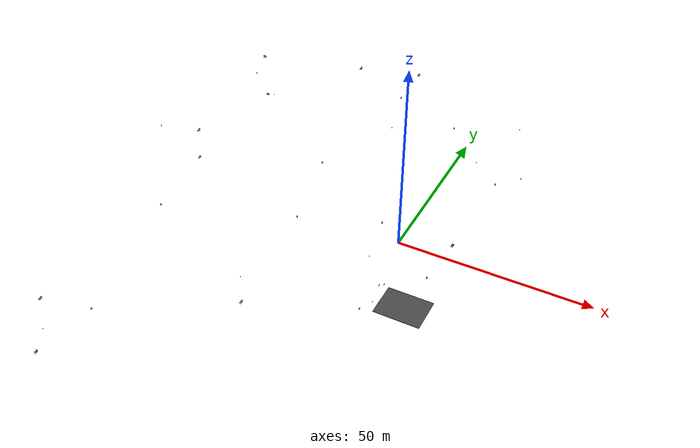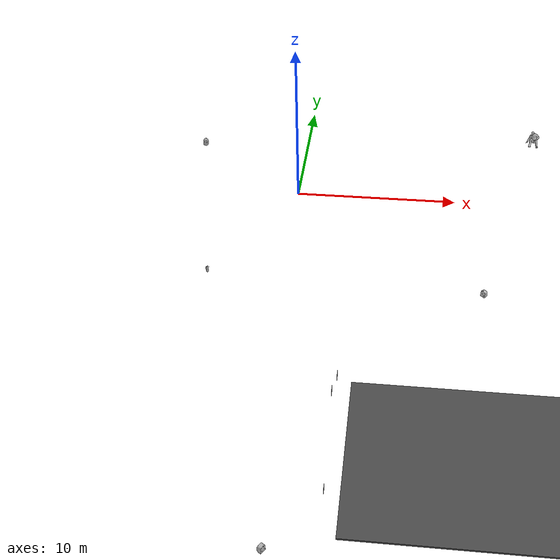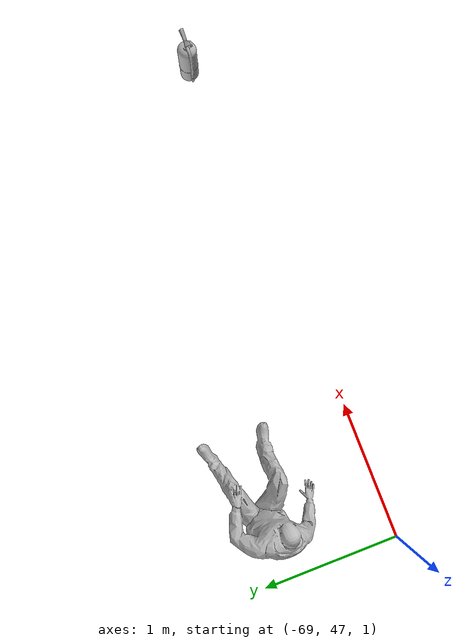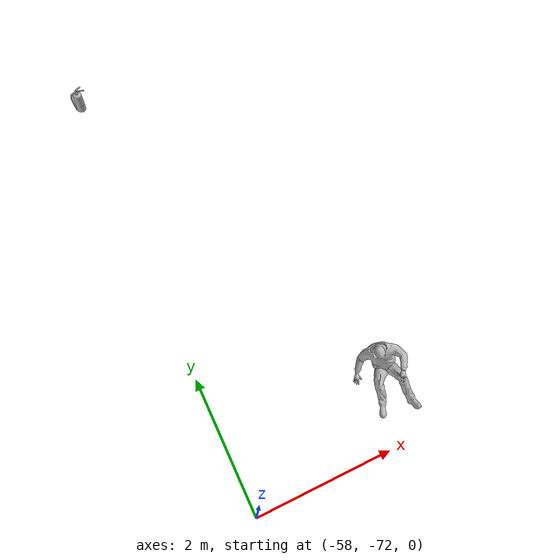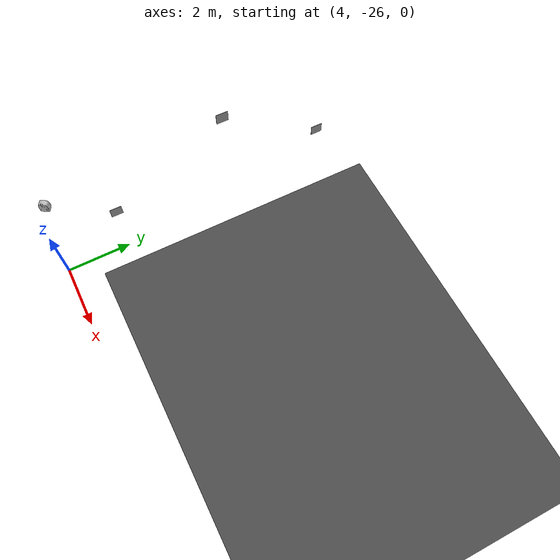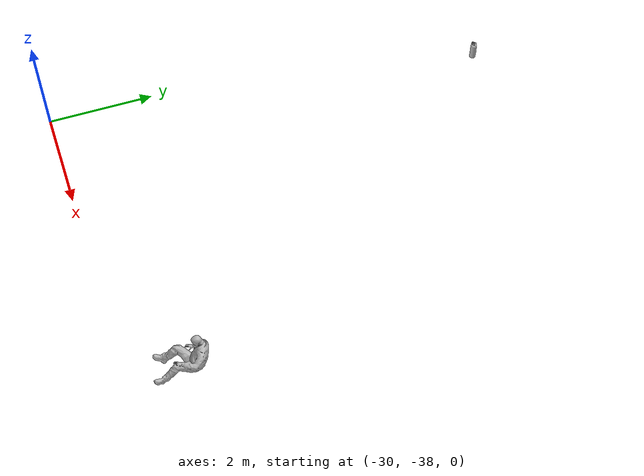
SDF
<sdf version="1.6">
 <world name="default">
  <light name="sun" type="directional">
   <pose>0 0 10 0 -0 0</pose>
   <diffuse>0.8 0.8 0.8 1</diffuse>
   <specular>0.2 0.2 0.2 1</specular>
   <attenuation>
    <range>1000</range>
    <constant>0.9</constant>
    <linear>0.01</linear>
    <quadratic>0.001</quadratic>
   </attenuation>
   <direction>-0.5 0.1 -0.9</direction>
  </light>
  <gravity>0 0 -9.8</gravity>
  <magnetic_field>6e-06 2.3e-05 -4.2e-05</magnetic_field>
  <atmosphere type="adiabatic"/>
  <physics name="default_physics" default="0" type="ode">
   <max_step_size>0.001</max_step_size>
   <real_time_factor>1</real_time_factor>
   <real_time_update_rate>1000</real_time_update_rate>
  </physics>
  <scene><ambient>0.4 0.4 0.4 1</ambient><background>0.7 0.7 0.7 1</background><shadows>1</shadows></scene>
  <audio><device>default</device></audio>
  <spherical_coordinates>
   <surface_model>EARTH_WGS84</surface_model>
   <latitude_deg>0</latitude_deg>
   <longitude_deg>0</longitude_deg>
   <elevation>0</elevation>
   <heading_deg>0</heading_deg>
  </spherical_coordinates>
  <model name="Apriltag36_11_00014">
   <link name="main">
    <visual name="main_Visual">
     <geometry><box><size>0.348 0.348 0.01</size></box></geometry>
     <material>
      <script>
       <uri>model://Apriltag36_11_00014/materials/scripts</uri>
       <uri>model://Apriltag36_11_00014/materials/textures</uri>
       <name>Apriltag36_11_00014</name>
      </script>
     </material>
    </visual>
   </link>
   <static>1</static>
   <pose>4.01 -24 1.99921 0 1.57 0</pose>
  </model>
  <model name="Apriltag36_11_00015">
   <link name="main">
    <visual name="main_Visual">
     <geometry><box><size>0.348 0.348 0.01</size></box></geometry>
     <material>
      <script>
       <uri>model://Apriltag36_11_00015/materials/scripts</uri>
       <uri>model://Apriltag36_11_00015/materials/textures</uri>
       <name>Apriltag36_11_00015</name>
      </script>
     </material>
    </visual>
   </link>
   <static>1</static>
   <pose>4.01 -17.5 2 0 1.57 0</pose>
  </model>
  <model name="Apriltag36_11_00016">
   <link name="main">
    <visual name="main_Visual">
     <geometry><box><size>0.348 0.348 0.01</size></box></geometry>
     <material>
      <script>
       <uri>model://Apriltag36_11_00016/materials/scripts</uri>
       <uri>model://Apriltag36_11_00016/materials/textures</uri>
       <name>Apriltag36_11_00016</name>
      </script>
     </material>
    </visual>
   </link>
   <static>1</static>
   <pose>4.01 -20.5 4.20131 0 1.57 0</pose>
  </model>
  <model name="backpack">
   <static>1</static>
   <link name="link">
    <collision name="collision">
     <geometry><mesh><uri>model://backpack/meshes/backpack.dae</uri></mesh></geometry>
    </collision>
    <visual name="visual">
     <geometry><mesh><uri>model://backpack/meshes/backpack.dae</uri></mesh></geometry>
    </visual>
   </link>
   <pose>1.5499 -25.9115 0 0 0 -2.14768</pose>
  </model>
  <model name="backpack_0">
   <static>1</static>
   <link name="link">
    <collision name="collision">
     <geometry><mesh><uri>model://backpack/meshes/backpack.dae</uri></mesh></geometry>
    </collision>
    <visual name="visual">
     <geometry><mesh><uri>model://backpack/meshes/backpack.dae</uri></mesh></geometry>
    </visual>
   </link>
   <pose>-7.11684 5.2861 0 0 -0 0</pose>
  </model>
  <model name="backpack_1">
   <static>1</static>
   <link name="link">
    <collision name="collision">
     <geometry><mesh><uri>model://backpack/meshes/backpack.dae</uri></mesh></geometry>
    </collision>
    <visual name="visual">
     <geometry><mesh><uri>model://backpack/meshes/backpack.dae</uri></mesh></geometry>
    </visual>
   </link>
   <pose>-28.3291 -2.97925 0 0 0 -1.13209</pose>
  </model>
  <model name="backpack_2">
   <static>1</static>
   <link name="link">
    <collision name="collision">
     <geometry><mesh><uri>model://backpack/meshes/backpack.dae</uri></mesh></geometry>
    </collision>
    <visual name="visual">
     <geometry><mesh><uri>model://backpack/meshes/backpack.dae</uri></mesh></geometry>
    </visual>
   </link>
   <pose>-53.8496 -55.0935 0 0 -0 0</pose>
  </model>
  <model name="backpack_3">
   <static>1</static>
   <link name="link">
    <collision name="collision">
     <geometry><mesh><uri>model://backpack/meshes/backpack.dae</uri></mesh></geometry>
    </collision>
    <visual name="visual">
     <geometry><mesh><uri>model://backpack/meshes/backpack.dae</uri></mesh></geometry>
    </visual>
   </link>
   <pose>-66.7448 -12.3944 -3.2873 -1e-06 0.071109 -3.09874</pose>
  </model>
  <model name="backpack_4">
   <static>1</static>
   <link name="link">
    <collision name="collision">
     <geometry><mesh><uri>model://backpack/meshes/backpack.dae</uri></mesh></geometry>
    </collision>
    <visual name="visual">
     <geometry><mesh><uri>model://backpack/meshes/backpack.dae</uri></mesh></geometry>
    </visual>
   </link>
   <pose>12.9782 38.905 -2.54972 0 -0 0</pose>
  </model>
  <model name="backpack_5">
   <static>1</static>
   <link name="link">
    <collision name="collision">
     <geometry><mesh><uri>model://backpack/meshes/backpack.dae</uri></mesh></geometry>
    </collision>
    <visual name="visual">
     <geometry><mesh><uri>model://backpack/meshes/backpack.dae</uri></mesh></geometry>
    </visual>
   </link>
   <pose>-34.3519 22.3142 0 0 -0 0</pose>
  </model>
  <model name="backpack_6">
   <static>1</static>
   <link name="link">
    <collision name="collision">
     <geometry><mesh><uri>model://backpack/meshes/backpack.dae</uri></mesh></geometry>
    </collision>
    <visual name="visual">
     <geometry><mesh><uri>model://backpack/meshes/backpack.dae</uri></mesh></geometry>
    </visual>
   </link>
   <pose>11.5016 -8.80955 0 0 -0 2.37507</pose>
  </model>
  <model name="backpack_7">
   <static>1</static>
   <link name="link">
    <collision name="collision">
     <geometry><mesh><uri>model://backpack/meshes/backpack.dae</uri></mesh></geometry>
    </collision>
    <visual name="visual">
     <geometry><mesh><uri>model://backpack/meshes/backpack.dae</uri></mesh></geometry>
    </visual>
   </link>
   <pose>-6.95637 57.6003 0 0 -0 1.12319</pose>
  </model>
  <model name="backpack_8">
   <static>1</static>
   <link name="link">
    <collision name="collision">
     <geometry><mesh><uri>model://backpack/meshes/backpack.dae</uri></mesh></geometry>
    </collision>
    <visual name="visual">
     <geometry><mesh><uri>model://backpack/meshes/backpack.dae</uri></mesh></geometry>
    </visual>
   </link>
   <pose>-14.2388 30.948 22.91 0 -0 2.61599</pose>
  </model>
  <model name="extinguisher">
   <static>1</static>
   <link name="link">
    <collision name="collision">
     <geometry><mesh><uri>model://extinguisher/meshes/extinguisher.dae</uri></mesh></geometry>
    </collision>
    <visual name="visual">
     <geometry><mesh><uri>model://extinguisher/meshes/extinguisher.dae</uri></mesh></geometry>
    </visual>
   </link>
   <pose>-4.25913 -8.20501 0 0 -0 0</pose>
  </model>
  <model name="extinguisher_0">
   <static>1</static>
   <link name="link">
    <collision name="collision">
     <geometry><mesh><uri>model://extinguisher/meshes/extinguisher.dae</uri></mesh></geometry>
    </collision>
    <visual name="visual">
     <geometry><mesh><uri>model://extinguisher/meshes/extinguisher.dae</uri></mesh></geometry>
    </visual>
   </link>
   <pose>-28.909 -29.6289 0 0 -0 0</pose>
  </model>
  <model name="extinguisher_1">
   <static>1</static>
   <link name="link">
    <collision name="collision">
     <geometry><mesh><uri>model://extinguisher/meshes/extinguisher.dae</uri></mesh></geometry>
    </collision>
    <visual name="visual">
     <geometry><mesh><uri>model://extinguisher/meshes/extinguisher.dae</uri></mesh></geometry>
    </visual>
   </link>
   <pose>-24.113 48.9607 0 0 -0 0</pose>
  </model>
  <model name="extinguisher_2">
   <static>1</static>
   <link name="link">
    <collision name="collision">
     <geometry><mesh><uri>model://extinguisher/meshes/extinguisher.dae</uri></mesh></geometry>
    </collision>
    <visual name="visual">
     <geometry><mesh><uri>model://extinguisher/meshes/extinguisher.dae</uri></mesh></geometry>
    </visual>
   </link>
   <pose>11.3634 66.2611 0 0 -0 0</pose>
  </model>
  <model name="extinguisher_3">
   <static>1</static>
   <link name="link">
    <collision name="collision">
     <geometry><mesh><uri>model://extinguisher/meshes/extinguisher.dae</uri></mesh></geometry>
    </collision>
    <visual name="visual">
     <geometry><mesh><uri>model://extinguisher/meshes/extinguisher.dae</uri></mesh></geometry>
    </visual>
   </link>
   <pose>-65.4947 47.227 1.57409 0 -0 0</pose>
  </model>
  <model name="extinguisher_4">
   <static>1</static>
   <link name="link">
    <collision name="collision">
     <geometry><mesh><uri>model://extinguisher/meshes/extinguisher.dae</uri></mesh></geometry>
    </collision>
    <visual name="visual">
     <geometry><mesh><uri>model://extinguisher/meshes/extinguisher.dae</uri></mesh></geometry>
    </visual>
   </link>
   <pose>-57.9607 -66.0541 1.52774 0 -0 0</pose>
  </model>
  <model name="extinguisher_5">
   <static>1</static>
   <link name="link">
    <collision name="collision">
     <geometry><mesh><uri>model://extinguisher/meshes/extinguisher.dae</uri></mesh></geometry>
    </collision>
    <visual name="visual">
     <geometry><mesh><uri>model://extinguisher/meshes/extinguisher.dae</uri></mesh></geometry>
    </visual>
   </link>
   <pose>-74.2904 0.955523 12.9594 0 -0 0</pose>
  </model>
  <model name="extinguisher_6">
   <static>1</static>
   <link name="link">
    <collision name="collision">
     <geometry><mesh><uri>model://extinguisher/meshes/extinguisher.dae</uri></mesh></geometry>
    </collision>
    <visual name="visual">
     <geometry><mesh><uri>model://extinguisher/meshes/extinguisher.dae</uri></mesh></geometry>
    </visual>
   </link>
   <pose>19.4419 41.4969 0 0 -0 0</pose>
  </model>
  <model name="extinguisher_7">
   <static>1</static>
   <link name="link">
    <collision name="collision">
     <geometry><mesh><uri>model://extinguisher/meshes/extinguisher.dae</uri></mesh></geometry>
    </collision>
    <visual name="visual">
     <geometry><mesh><uri>model://extinguisher/meshes/extinguisher.dae</uri></mesh></geometry>
    </visual>
   </link>
   <pose>5.81774 42.3177 0.711227 0 -0 0</pose>
  </model>
  <model name="extinguisher_8">
   <static>1</static>
   <link name="link">
    <collision name="collision">
     <geometry><mesh><uri>model://extinguisher/meshes/extinguisher.dae</uri></mesh></geometry>
    </collision>
    <visual name="visual">
     <geometry><mesh><uri>model://extinguisher/meshes/extinguisher.dae</uri></mesh></geometry>
    </visual>
   </link>
   <pose>-58.5341 27.3052 21 0 -0 0</pose>
  </model>
  <model name="survivor">
   <static>1</static>
   <link name="link">
    <pose>0 0 -0.623996 0 -0 0</pose>
    <collision name="collision">
     <geometry><mesh><uri>model://survivor/meshes/rescue_randy.dae</uri></mesh></geometry>
    </collision>
    <visual name="visual">
     <geometry><mesh><uri>model://survivor/meshes/rescue_randy.dae</uri></mesh></geometry>
    </visual>
   </link>
   <pose>-66.6833 -58.0085 0 0 -0 0</pose>
  </model>
  <model name="survivor_0">
   <static>1</static>
   <link name="link">
    <pose>0 0 -0.623996 0 -0 0</pose>
    <collision name="collision">
     <geometry><mesh><uri>model://survivor/meshes/rescue_randy.dae</uri></mesh></geometry>
    </collision>
    <visual name="visual">
     <geometry><mesh><uri>model://survivor/meshes/rescue_randy.dae</uri></mesh></geometry>
    </visual>
   </link>
   <pose>-55.5231 -70.9872 0 0 -0 0</pose>
  </model>
  <model name="survivor_1">
   <static>1</static>
   <link name="link">
    <pose>0 0 -0.623996 0 -0 0</pose>
    <collision name="collision">
     <geometry><mesh><uri>model://survivor/meshes/rescue_randy.dae</uri></mesh></geometry>
    </collision>
    <visual name="visual">
     <geometry><mesh><uri>model://survivor/meshes/rescue_randy.dae</uri></mesh></geometry>
    </visual>
   </link>
   <pose>-23.9432 -36.8348 0 0 -0 0</pose>
  </model>
  <model name="survivor_2">
   <static>1</static>
   <link name="link">
    <pose>0 0 -0.623996 0 -0 0</pose>
    <collision name="collision">
     <geometry><mesh><uri>model://survivor/meshes/rescue_randy.dae</uri></mesh></geometry>
    </collision>
    <visual name="visual">
     <geometry><mesh><uri>model://survivor/meshes/rescue_randy.dae</uri></mesh></geometry>
    </visual>
   </link>
   <pose>-66.9321 7.28888 0.61083 0 -0 0</pose>
  </model>
  <model name="survivor_3">
   <static>1</static>
   <link name="link">
    <pose>0 0 -0.623996 0 -0 0</pose>
    <collision name="collision">
     <geometry><mesh><uri>model://survivor/meshes/rescue_randy.dae</uri></mesh></geometry>
    </collision>
    <visual name="visual">
     <geometry><mesh><uri>model://survivor/meshes/rescue_randy.dae</uri></mesh></geometry>
    </visual>
   </link>
   <pose>14.3473 0.291891 4.51921 0 -0 0</pose>
  </model>
  <model name="survivor_4">
   <static>1</static>
   <link name="link">
    <pose>0 0 -0.623996 0 -0 0</pose>
    <collision name="collision">
     <geometry><mesh><uri>model://survivor/meshes/rescue_randy.dae</uri></mesh></geometry>
    </collision>
    <visual name="visual">
     <geometry><mesh><uri>model://survivor/meshes/rescue_randy.dae</uri></mesh></geometry>
    </visual>
   </link>
   <pose>-66.3143 7.56488 10.055 0 -0 0</pose>
  </model>
  <model name="survivor_5">
   <static>1</static>
   <link name="link">
    <pose>0 0 -0.623996 0 -0 0</pose>
    <collision name="collision">
     <geometry><mesh><uri>model://survivor/meshes/rescue_randy.dae</uri></mesh></geometry>
    </collision>
    <visual name="visual">
     <geometry><mesh><uri>model://survivor/meshes/rescue_randy.dae</uri></mesh></geometry>
    </visual>
   </link>
   <pose>-14.7119 44.6243 23 0 -0 0</pose>
  </model>
  <model name="survivor_6">
   <static>1</static>
   <link name="link">
    <pose>0 0 -0.623996 0 -0 0</pose>
    <collision name="collision">
     <geometry><mesh><uri>model://survivor/meshes/rescue_randy.dae</uri></mesh></geometry>
    </collision>
    <visual name="visual">
     <geometry><mesh><uri>model://survivor/meshes/rescue_randy.dae</uri></mesh></geometry>
    </visual>
   </link>
   <pose>-34.8524 48.5825 18.1807 0 -0 0</pose>
  </model>
  <model name="survivor_7">
   <static>1</static>
   <link name="link">
    <pose>0 0 -0.623996 0 -0 0</pose>
    <collision name="collision">
     <geometry><mesh><uri>model://survivor/meshes/rescue_randy.dae</uri></mesh></geometry>
    </collision>
    <visual name="visual">
     <geometry><mesh><uri>model://survivor/meshes/rescue_randy.dae</uri></mesh></geometry>
    </visual>
   </link>
   <pose>-64.9775 41.7477 18.1268 0 -0 1.45</pose>
  </model>
  <model name="survivor_8">
   <static>1</static>
   <link name="link">
    <pose>0 0 -0.623996 0 -0 0</pose>
    <collision name="collision">
     <geometry><mesh><uri>model://survivor/meshes/rescue_randy.dae</uri></mesh></geometry>
    </collision>
    <visual name="visual">
     <geometry><mesh><uri>model://survivor/meshes/rescue_randy.dae</uri></mesh></geometry>
    </visual>
   </link>
   <pose>-68.5983 47.8488 0.513332 0 -0 1.75</pose>
  </model>
  <model name="asphalt_plane">
   <static>1</static>
   <link name="link">
    <collision name="collision"><geometry><box><size>9 11.6978 0.1</size></box></geometry></collision>
    <visual name="visual">
     <cast_shadows>0</cast_shadows>
     <geometry><box><size>9 11.6978 0.1</size></box></geometry>
     <material>
      <script>
       <uri>model://asphalt_plane/materials/scripts</uri>
       <uri>model://asphalt_plane/materials/textures</uri>
       <name>vrc/asphalt</name>
      </script>
     </material>
    </visual>
   </link>
   <pose>10.469 -20.5581 0 0 0 -1.5708</pose>
  </model>
 </world>
</sdf>
